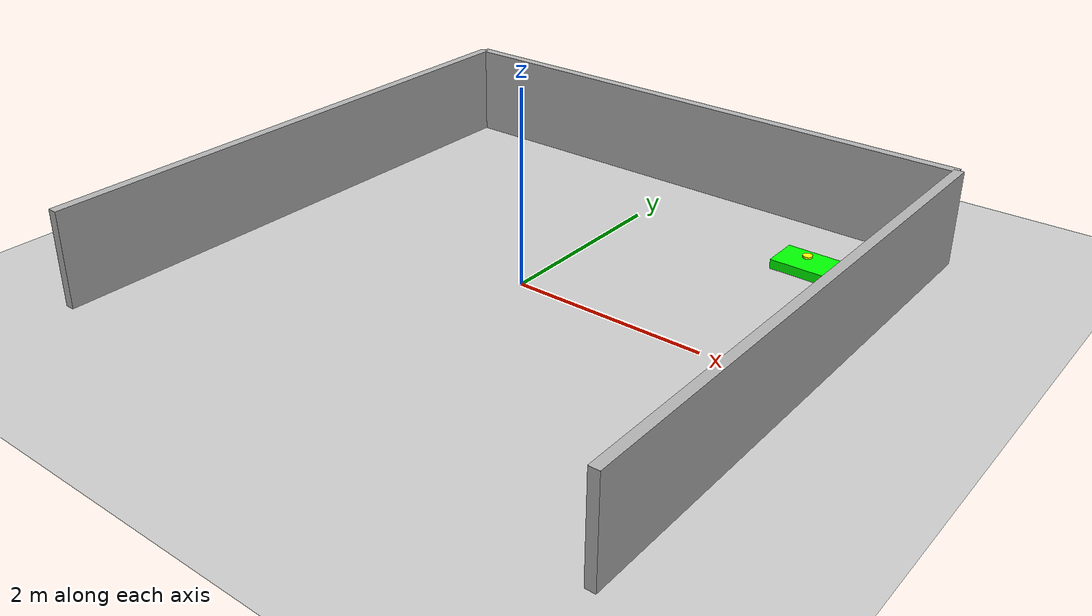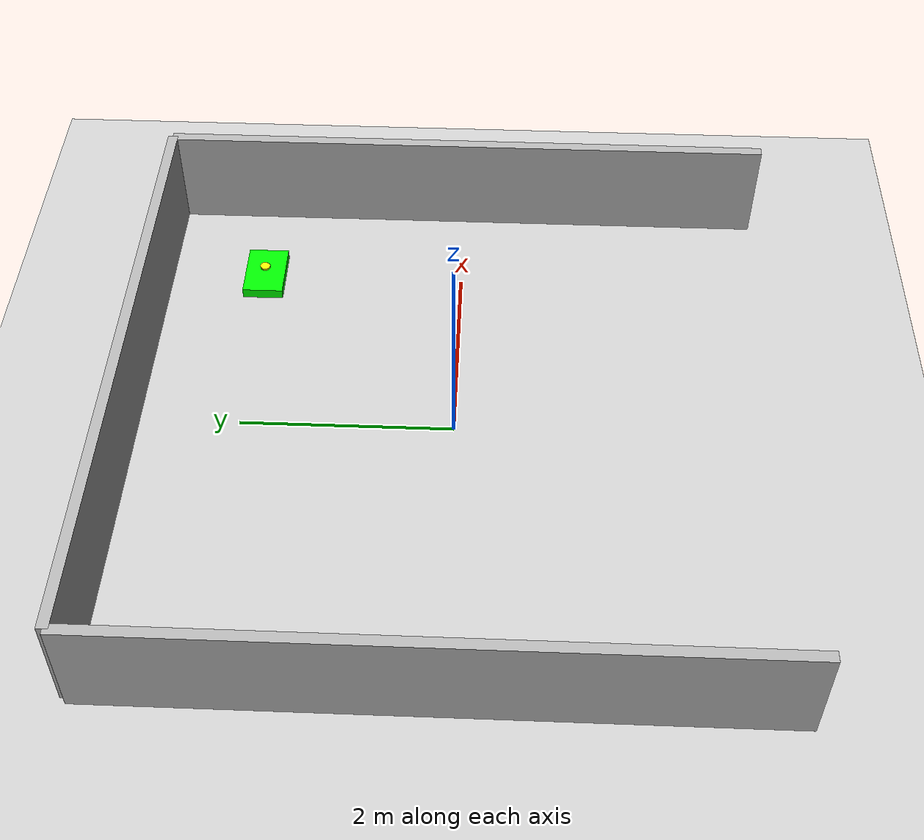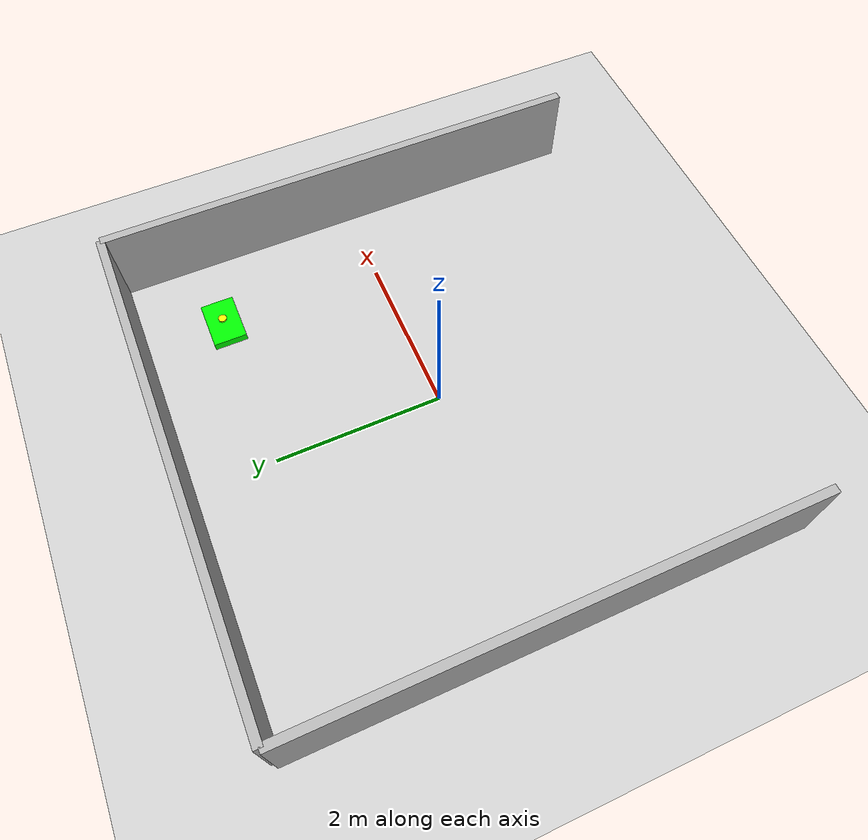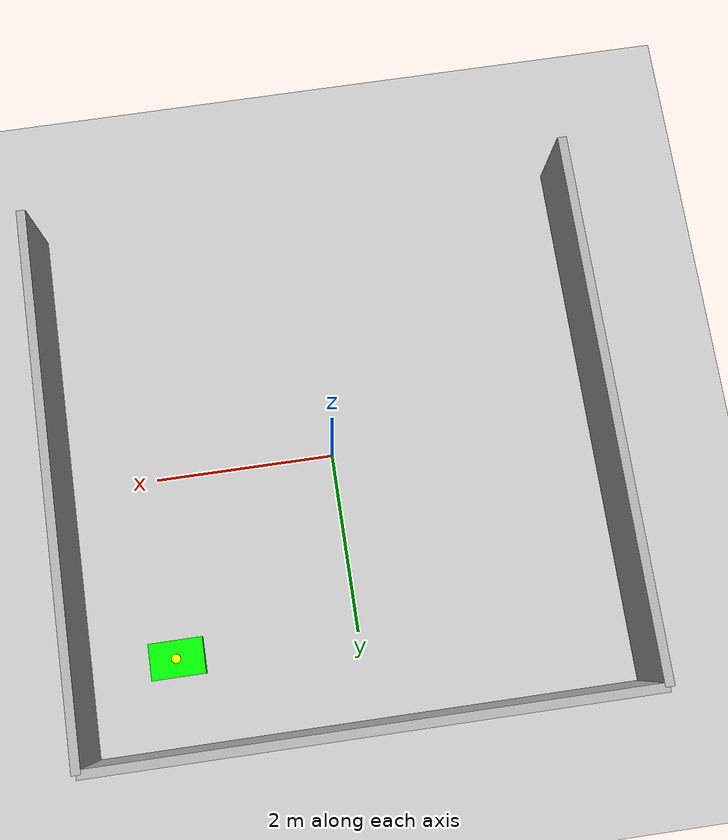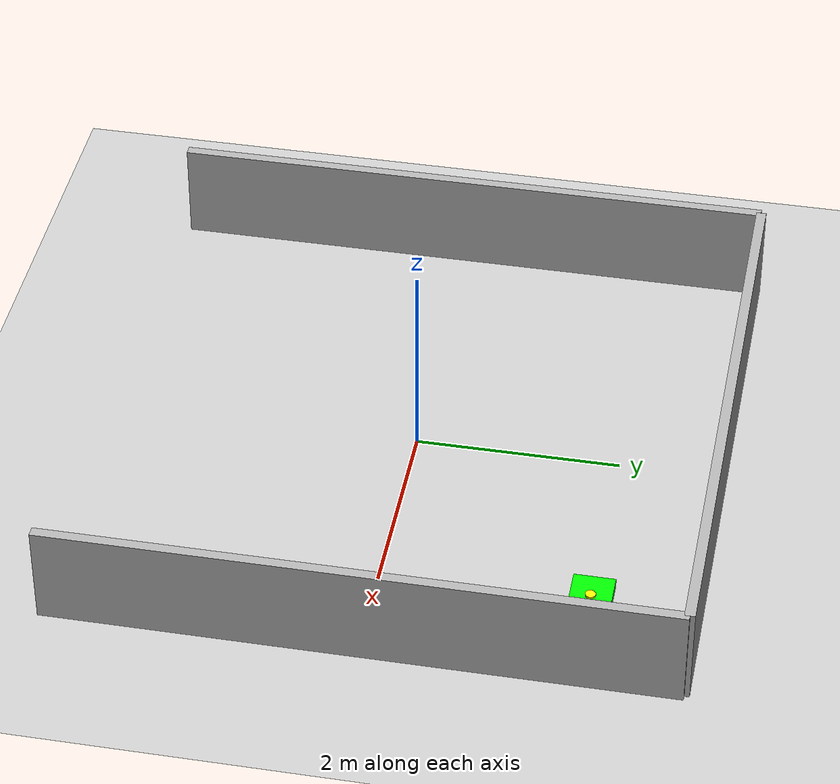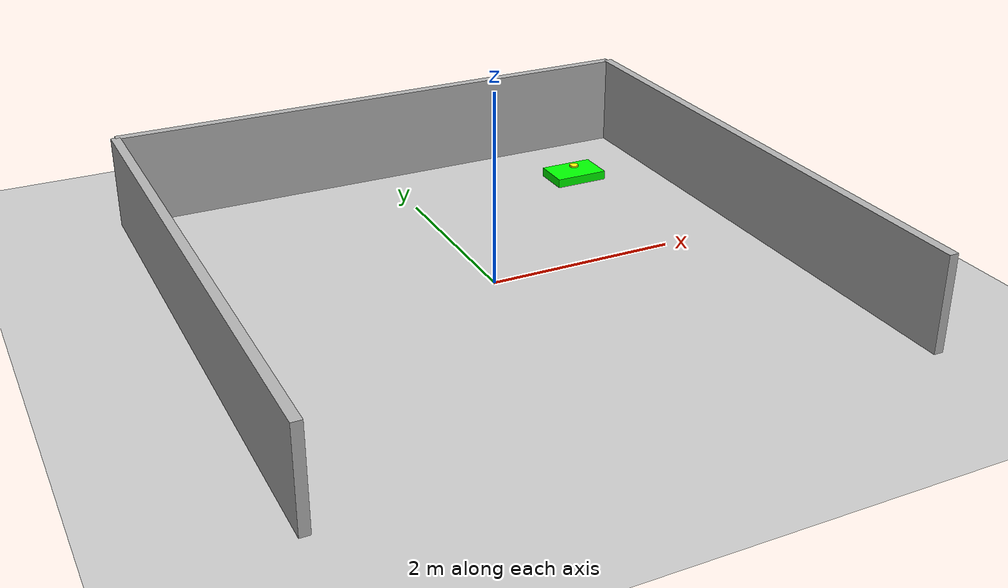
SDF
<?xml version="1.0" ?>
<sdf version="1.6">
  <world name="docking_world">

    <!-- Physics -->
    <physics name="default_physics" default="0" type="ode">
      <max_step_size>0.001</max_step_size>
      <real_time_factor>1</real_time_factor>
      <real_time_update_rate>1000</real_time_update_rate>
    </physics>

    <!-- Plugin for physics -->
    <plugin name="gazebo_ros_state" filename="libgazebo_ros_state.so">
      <ros>
        <namespace>/gazebo</namespace>
      </ros>
      <update_rate>1.0</update_rate>
    </plugin>

    <!-- Light -->
    <include>
      <uri>model://sun</uri>
    </include>

    <!-- Ground -->
    <include>
      <uri>model://ground_plane</uri>
    </include>

    <!-- Walls to create a room -->
    <model name="wall_1">
      <static>true</static>
      <pose>3 0 0.5 0 0 0</pose>
      <link name="link">
        <visual name="visual">
          <geometry>
            <box>
              <size>0.1 6 1</size>
            </box>
          </geometry>
          <material>
            <ambient>0.7 0.7 0.7 1</ambient>
          </material>
        </visual>
        <collision name="collision">
          <geometry>
            <box>
              <size>0.1 6 1</size>
            </box>
          </geometry>
        </collision>
      </link>
    </model>

    <model name="wall_2">
      <static>true</static>
      <pose>-3 0 0.5 0 0 0</pose>
      <link name="link">
        <visual name="visual">
          <geometry>
            <box>
              <size>0.1 6 1</size>
            </box>
          </geometry>
          <material>
            <ambient>0.7 0.7 0.7 1</ambient>
          </material>
        </visual>
        <collision name="collision">
          <geometry>
            <box>
              <size>0.1 6 1</size>
            </box>
          </geometry>
        </collision>
      </link>
    </model>

    <model name="wall_3">
      <static>true</static>
      <pose>0 3 0.5 0 0 1.57</pose>
      <link name="link">
        <visual name="visual">
          <geometry>
            <box>
              <size>0.1 6 1</size>
            </box>
          </geometry>
          <material>
            <ambient>0.7 0.7 0.7 1</ambient>
          </material>
        </visual>
        <collision name="collision">
          <geometry>
            <box>
              <size>0.1 6 1</size>
            </box>
          </geometry>
        </collision>
      </link>
    </model>

    <!-- Docking Station -->
    <model name="charging_dock">
      <static>true</static>
      <pose>2 2 0.05 0 0 0</pose>
      <link name="dock_base">
        <visual name="visual">
          <geometry>
            <box>
              <size>0.6 0.4 0.1</size>
            </box>
          </geometry>
          <material>
            <ambient>0 1 0 1</ambient>
          </material>
        </visual>
        <collision name="collision">
          <geometry>
            <box>
              <size>0.6 0.4 0.1</size>
            </box>
          </geometry>
        </collision>
      </link>

      <!-- Charging port marker -->
      <link name="charging_port">
        <pose>0 0 0.1 0 0 0</pose>
        <visual name="visual">
          <geometry>
            <cylinder>
              <radius>0.05</radius>
              <length>0.02</length>
            </cylinder>
          </geometry>
          <material>
            <ambient>1 1 0 1</ambient>
          </material>
        </visual>
      </link>

      <joint name="dock_to_port" type="fixed">
        <parent>dock_base</parent>
        <child>charging_port</child>
      </joint>
    </model>

  </world>
</sdf>
